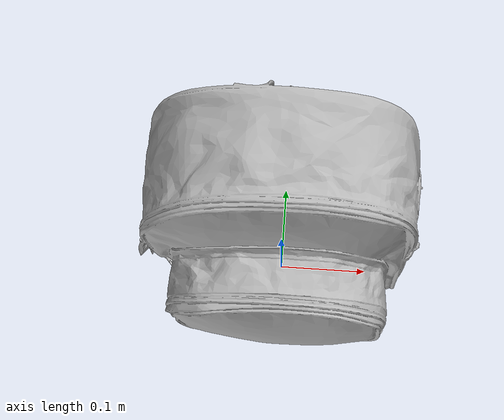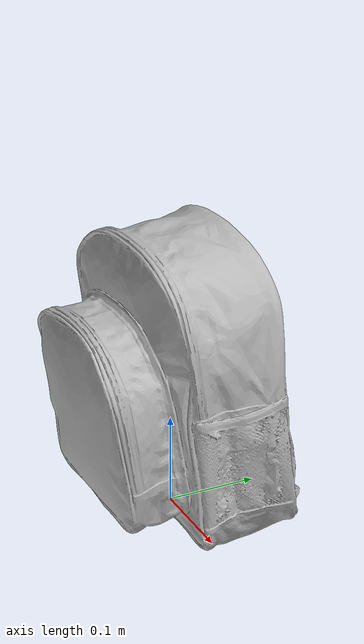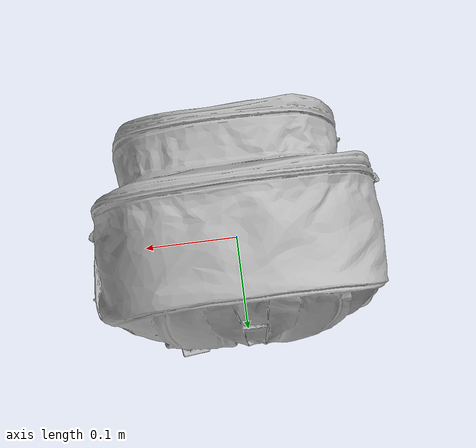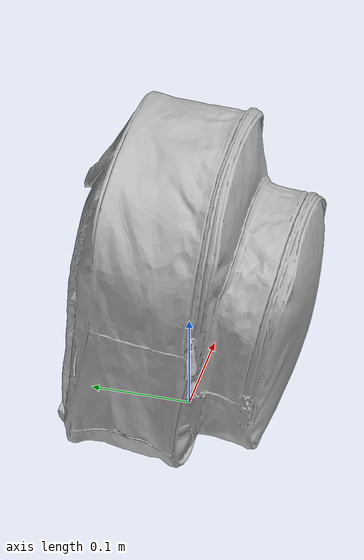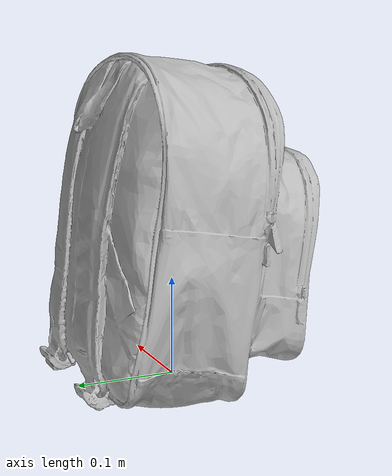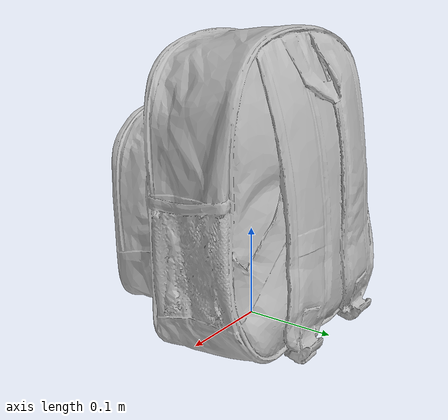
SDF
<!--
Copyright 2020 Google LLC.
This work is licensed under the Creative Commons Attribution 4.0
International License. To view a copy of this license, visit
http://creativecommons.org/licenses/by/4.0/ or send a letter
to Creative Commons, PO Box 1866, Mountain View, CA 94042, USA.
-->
<?xml version="1.0" ?>
<sdf version="1.6">
  <model name="Olive_Kids_Mermaids_Pack_n_Snack_Backpack">
    <link name="link_0">
      <visual name="visual">
        <geometry>
          <mesh>
            <uri>meshes/model.obj</uri>
          </mesh>
        </geometry>
      </visual>
      <collision name="collision_0">
        <geometry>
          <mesh>
            <uri>meshes/model.obj</uri>
          </mesh>
        </geometry>
      </collision>
    </link>
  </model>
</sdf>
